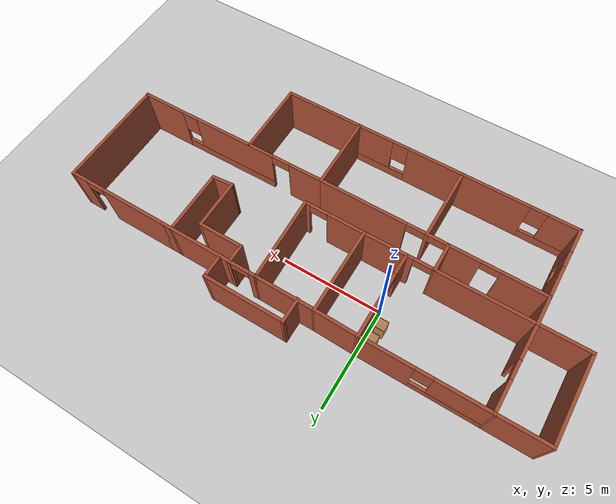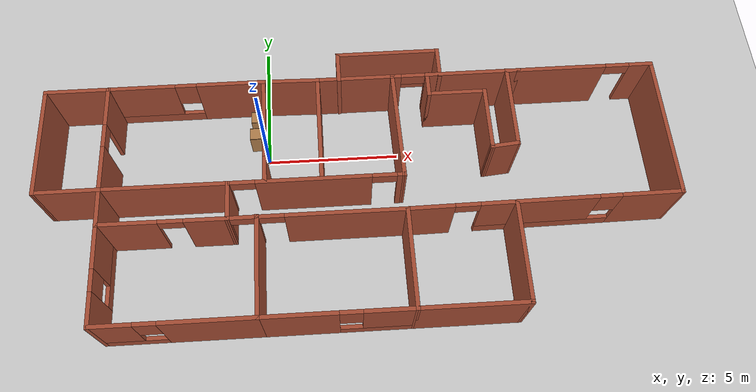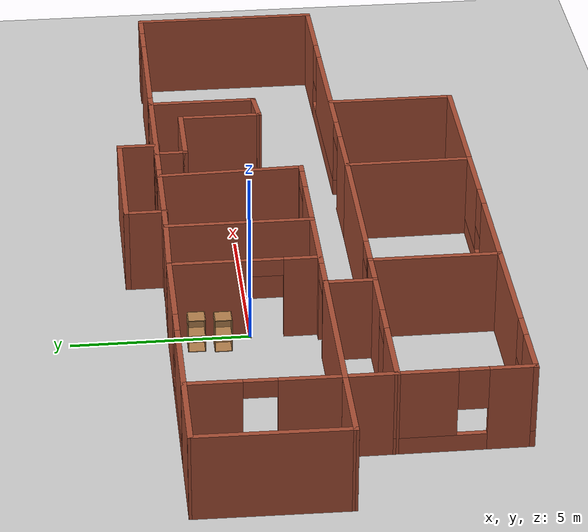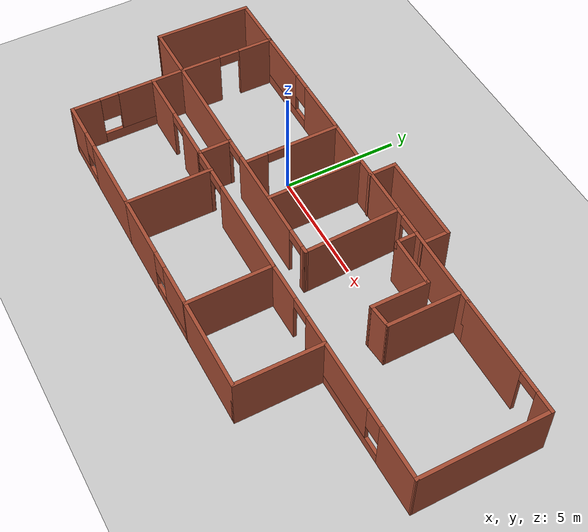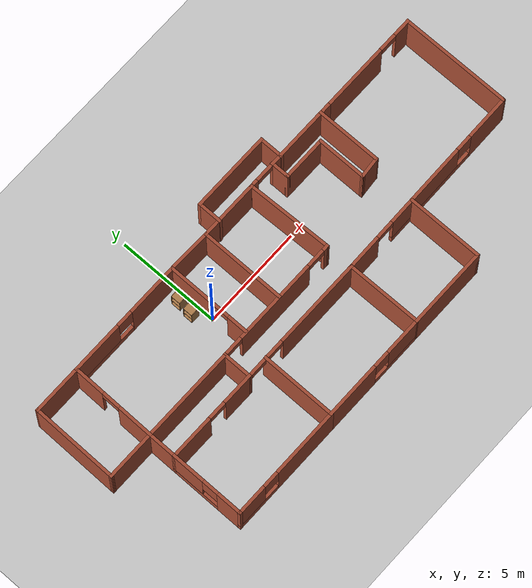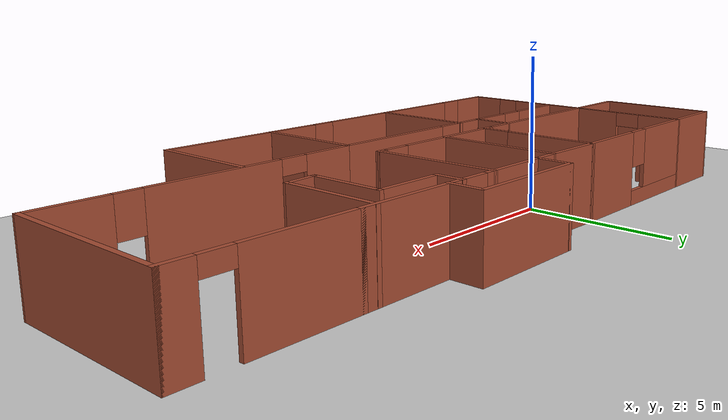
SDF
<sdf version="1.7">
 <world name="default">
  <model name="ground_plane">
   <static>1</static>
   <link name="link">
    <collision name="collision">
     <geometry><plane><normal>0 0 1</normal><size>100 100</size></plane></geometry>
     <surface><friction><ode><mu>100</mu><mu2>50</mu2></ode></friction></surface>
    </collision>
    <visual name="visual">
     <cast_shadows>0</cast_shadows>
     <geometry><plane><normal>0 0 1</normal><size>100 100</size></plane></geometry>
     <material>
      <script><uri>file://media/materials/scripts/gazebo.material</uri><name>Gazebo/Grey</name></script>
     </material>
    </visual>
   </link>
  </model>
  <model name="test_world">
   <pose>3.29981 -1.81395 0 0 -0 0</pose>
   <link name="Wall_0">
    <collision name="Wall_0_Collision">
     <geometry><box><size>1.5 0.15 2.5</size></box></geometry>
     <pose>0 0 1.25 0 -0 0</pose>
    </collision>
    <visual name="Wall_0_Visual">
     <pose>0 0 1.25 0 -0 0</pose>
     <geometry><box><size>1.5 0.15 2.5</size></box></geometry>
     <material>
      <script><uri>file://media/materials/scripts/gazebo.material</uri><name>Gazebo/Bricks</name></script>
      <ambient>1 1 1 1</ambient>
     </material>
     <meta><layer>0</layer></meta>
    </visual>
    <pose>-4.62561 -0.796372 0 0 -0 1.5708</pose>
   </link>
   <link name="Wall_1">
    <pose>-1.45061 -0.121372 0 0 -0 0</pose>
    <visual name="Wall_1_Visual_0">
     <pose>-3.1725 0 1.25 0 -0 0</pose>
     <geometry><box><size>0.155 0.15 2.5</size></box></geometry>
     <material>
      <script><uri>file://media/materials/scripts/gazebo.material</uri><name>Gazebo/Bricks</name></script>
      <ambient>1 1 1 1</ambient>
     </material>
     <meta><layer>0</layer></meta>
    </visual>
    <collision name="Wall_1_Collision_0">
     <geometry><box><size>0.155 0.15 2.5</size></box></geometry>
     <pose>-3.1725 0 1.25 0 -0 0</pose>
    </collision>
    <visual name="Wall_1_Visual_1">
     <pose>-0.091888 0 1.25 0 -0 0</pose>
     <geometry><box><size>4.20622 0.15 2.5</size></box></geometry>
     <material>
      <script><uri>file://media/materials/scripts/gazebo.material</uri><name>Gazebo/Bricks</name></script>
      <ambient>1 1 1 1</ambient>
     </material>
     <meta><layer>0</layer></meta>
    </visual>
    <collision name="Wall_1_Collision_1">
     <geometry><box><size>4.20622 0.15 2.5</size></box></geometry>
     <pose>-0.091888 0 1.25 0 -0 0</pose>
    </collision>
    <visual name="Wall_1_Visual_2">
     <pose>3.08061 0 1.25 0 -0 0</pose>
     <geometry><box><size>0.338776 0.15 2.5</size></box></geometry>
     <material>
      <script><uri>file://media/materials/scripts/gazebo.material</uri><name>Gazebo/Bricks</name></script>
      <ambient>1 1 1 1</ambient>
     </material>
     <meta><layer>0</layer></meta>
    </visual>
    <collision name="Wall_1_Collision_2">
     <geometry><box><size>0.338776 0.15 2.5</size></box></geometry>
     <pose>3.08061 0 1.25 0 -0 0</pose>
    </collision>
    <visual name="Wall_1_Visual_3">
     <pose>-2.645 0 2.25 0 -0 0</pose>
     <geometry><box><size>0.9 0.15 0.5</size></box></geometry>
     <material>
      <script><uri>file://media/materials/scripts/gazebo.material</uri><name>Gazebo/Bricks</name></script>
      <ambient>1 1 1 1</ambient>
     </material>
     <meta><layer>0</layer></meta>
    </visual>
    <collision name="Wall_1_Collision_3">
     <geometry><box><size>0.9 0.15 0.5</size></box></geometry>
     <pose>-2.645 0 2.25 0 -0 0</pose>
    </collision>
    <visual name="Wall_1_Visual_4">
     <pose>2.46122 0 2.25 0 -0 0</pose>
     <geometry><box><size>0.9 0.15 0.5</size></box></geometry>
     <material>
      <script><uri>file://media/materials/scripts/gazebo.material</uri><name>Gazebo/Bricks</name></script>
      <ambient>1 1 1 1</ambient>
     </material>
     <meta><layer>0</layer></meta>
    </visual>
    <collision name="Wall_1_Collision_4">
     <geometry><box><size>0.9 0.15 0.5</size></box></geometry>
     <pose>2.46122 0 2.25 0 -0 0</pose>
    </collision>
   </link>
   <link name="Wall_10">
    <collision name="Wall_10_Collision">
     <geometry><box><size>3.75 0.15 2.5</size></box></geometry>
     <pose>0 0 1.25 0 -0 0</pose>
    </collision>
    <visual name="Wall_10_Visual">
     <pose>0 0 1.25 0 -0 0</pose>
     <geometry><box><size>3.75 0.15 2.5</size></box></geometry>
     <material>
      <script><uri>file://media/materials/scripts/gazebo.material</uri><name>Gazebo/Bricks</name></script>
      <ambient>1 1 1 1</ambient>
     </material>
     <meta><layer>0</layer></meta>
    </visual>
    <pose>-3.59781 -3.25555 0 0 -0 -1.5708</pose>
   </link>
   <link name="Wall_11">
    <pose>-6.39781 -5.05555 0 0 -0 3.14159</pose>
    <visual name="Wall_11_Visual_0">
     <pose>-1.17433 0 1.25 0 -0 0</pose>
     <geometry><box><size>3.40134 0.15 2.5</size></box></geometry>
     <material>
      <script><uri>file://media/materials/scripts/gazebo.material</uri><name>Gazebo/Bricks</name></script>
      <ambient>1 1 1 1</ambient>
     </material>
     <meta><layer>0</layer></meta>
    </visual>
    <collision name="Wall_11_Collision_0">
     <geometry><box><size>3.40134 0.15 2.5</size></box></geometry>
     <pose>-1.17433 0 1.25 0 -0 0</pose>
    </collision>
    <visual name="Wall_11_Visual_1">
     <pose>1.70067 0 0.25 0 -0 0</pose>
     <geometry><box><size>2.34866 0.15 0.5</size></box></geometry>
     <material>
      <script><uri>file://media/materials/scripts/gazebo.material</uri><name>Gazebo/Bricks</name></script>
      <ambient>1 1 1 1</ambient>
     </material>
     <meta><layer>0</layer></meta>
    </visual>
    <collision name="Wall_11_Collision_1">
     <geometry><box><size>2.34866 0.15 0.5</size></box></geometry>
     <pose>1.70067 0 0.25 0 -0 0</pose>
    </collision>
    <visual name="Wall_11_Visual_2">
     <pose>2.10067 0 1.5 0 -0 0</pose>
     <geometry><box><size>1.54866 0.15 2</size></box></geometry>
     <material>
      <script><uri>file://media/materials/scripts/gazebo.material</uri><name>Gazebo/Bricks</name></script>
      <ambient>1 1 1 1</ambient>
     </material>
     <meta><layer>0</layer></meta>
    </visual>
    <collision name="Wall_11_Collision_2">
     <geometry><box><size>1.54866 0.15 2</size></box></geometry>
     <pose>2.10067 0 1.5 0 -0 0</pose>
    </collision>
    <visual name="Wall_11_Visual_3">
     <pose>0.926338 0 1.9 0 -0 0</pose>
     <geometry><box><size>0.8 0.15 1.2</size></box></geometry>
     <material>
      <script><uri>file://media/materials/scripts/gazebo.material</uri><name>Gazebo/Bricks</name></script>
      <ambient>1 1 1 1</ambient>
     </material>
     <meta><layer>0</layer></meta>
    </visual>
    <collision name="Wall_11_Collision_3">
     <geometry><box><size>0.8 0.15 1.2</size></box></geometry>
     <pose>0.926338 0 1.9 0 -0 0</pose>
    </collision>
   </link>
   <link name="Wall_12">
    <pose>-9.19781 -3.25555 0 0 -0 1.5708</pose>
    <visual name="Wall_12_Visual_0">
     <pose>-1.23439 0 1.25 0 -0 0</pose>
     <geometry><box><size>1.28121 0.15 2.5</size></box></geometry>
     <material>
      <script><uri>file://media/materials/scripts/gazebo.material</uri><name>Gazebo/Bricks</name></script>
      <ambient>1 1 1 1</ambient>
     </material>
     <meta><layer>0</layer></meta>
    </visual>
    <collision name="Wall_12_Collision_0">
     <geometry><box><size>1.28121 0.15 2.5</size></box></geometry>
     <pose>-1.23439 0 1.25 0 -0 0</pose>
    </collision>
    <visual name="Wall_12_Visual_1">
     <pose>0.640607 0 0.25 0 -0 0</pose>
     <geometry><box><size>2.46879 0.15 0.5</size></box></geometry>
     <material>
      <script><uri>file://media/materials/scripts/gazebo.material</uri><name>Gazebo/Bricks</name></script>
      <ambient>1 1 1 1</ambient>
     </material>
     <meta><layer>0</layer></meta>
    </visual>
    <collision name="Wall_12_Collision_1">
     <geometry><box><size>2.46879 0.15 0.5</size></box></geometry>
     <pose>0.640607 0 0.25 0 -0 0</pose>
    </collision>
    <visual name="Wall_12_Visual_2">
     <pose>1.04061 0 1.5 0 -0 0</pose>
     <geometry><box><size>1.66879 0.15 2</size></box></geometry>
     <material>
      <script><uri>file://media/materials/scripts/gazebo.material</uri><name>Gazebo/Bricks</name></script>
      <ambient>1 1 1 1</ambient>
     </material>
     <meta><layer>0</layer></meta>
    </visual>
    <collision name="Wall_12_Collision_2">
     <geometry><box><size>1.66879 0.15 2</size></box></geometry>
     <pose>1.04061 0 1.5 0 -0 0</pose>
    </collision>
    <visual name="Wall_12_Visual_3">
     <pose>-0.193786 0 1.9 0 -0 0</pose>
     <geometry><box><size>0.8 0.15 1.2</size></box></geometry>
     <material>
      <script><uri>file://media/materials/scripts/gazebo.material</uri><name>Gazebo/Bricks</name></script>
      <ambient>1 1 1 1</ambient>
     </material>
     <meta><layer>0</layer></meta>
    </visual>
    <collision name="Wall_12_Collision_3">
     <geometry><box><size>0.8 0.15 1.2</size></box></geometry>
     <pose>-0.193786 0 1.9 0 -0 0</pose>
    </collision>
   </link>
   <link name="Wall_13">
    <pose>-6.91171 -1.46346 0 0 -0 -0.00346</pose>
    <visual name="Wall_13_Visual_0">
     <pose>-1.25332 0 1.25 0 -0 0</pose>
     <geometry><box><size>2.21558 0.15 2.5</size></box></geometry>
     <material>
      <script><uri>file://media/materials/scripts/gazebo.material</uri><name>Gazebo/Bricks</name></script>
      <ambient>1 1 1 1</ambient>
     </material>
     <meta><layer>0</layer></meta>
    </visual>
    <collision name="Wall_13_Collision_0">
     <geometry><box><size>2.21558 0.15 2.5</size></box></geometry>
     <pose>-1.25332 0 1.25 0 -0 0</pose>
    </collision>
    <visual name="Wall_13_Visual_1">
     <pose>1.55779 0 1.25 0 -0 0</pose>
     <geometry><box><size>1.60664 0.15 2.5</size></box></geometry>
     <material>
      <script><uri>file://media/materials/scripts/gazebo.material</uri><name>Gazebo/Bricks</name></script>
      <ambient>1 1 1 1</ambient>
     </material>
     <meta><layer>0</layer></meta>
    </visual>
    <collision name="Wall_13_Collision_1">
     <geometry><box><size>1.60664 0.15 2.5</size></box></geometry>
     <pose>1.55779 0 1.25 0 -0 0</pose>
    </collision>
    <visual name="Wall_13_Visual_2">
     <pose>0.304473 0 2.25 0 -0 0</pose>
     <geometry><box><size>0.9 0.15 0.5</size></box></geometry>
     <material>
      <script><uri>file://media/materials/scripts/gazebo.material</uri><name>Gazebo/Bricks</name></script>
      <ambient>1 1 1 1</ambient>
     </material>
     <meta><layer>0</layer></meta>
    </visual>
    <collision name="Wall_13_Collision_2">
     <geometry><box><size>0.9 0.15 0.5</size></box></geometry>
     <pose>0.304473 0 2.25 0 -0 0</pose>
    </collision>
   </link>
   <link name="Wall_15">
    <collision name="Wall_15_Collision">
     <geometry><box><size>1.5 0.15 2.5</size></box></geometry>
     <pose>0 0 1.25 0 -0 0</pose>
    </collision>
    <visual name="Wall_15_Visual">
     <pose>0 0 1.25 0 -0 0</pose>
     <geometry><box><size>1.5 0.15 2.5</size></box></geometry>
     <material>
      <script><uri>file://media/materials/scripts/gazebo.material</uri><name>Gazebo/Bricks</name></script>
      <ambient>1 1 1 1</ambient>
     </material>
     <meta><layer>0</layer></meta>
    </visual>
    <pose>-9.19781 -0.780551 0 0 -0 1.5708</pose>
   </link>
   <link name="Wall_16">
    <collision name="Wall_16_Collision">
     <geometry><box><size>4.72222 0.15 2.5</size></box></geometry>
     <pose>0 0 1.25 0 -0 0</pose>
    </collision>
    <visual name="Wall_16_Visual">
     <pose>0 0 1.25 0 -0 0</pose>
     <geometry><box><size>4.72222 0.15 2.5</size></box></geometry>
     <material>
      <script><uri>file://media/materials/scripts/gazebo.material</uri><name>Gazebo/Bricks</name></script>
      <ambient>1 1 1 1</ambient>
     </material>
     <meta><layer>0</layer></meta>
    </visual>
    <pose>-6.91171 -0.113462 0 0 -0 -0.00346</pose>
   </link>
   <link name="Wall_18">
    <pose>-0.922808 -5.05555 0 0 -0 0</pose>
    <visual name="Wall_18_Visual_0">
     <pose>-1.34867 0 1.25 0 -0 0</pose>
     <geometry><box><size>2.80266 0.15 2.5</size></box></geometry>
     <material>
      <script><uri>file://media/materials/scripts/gazebo.material</uri><name>Gazebo/Bricks</name></script>
      <ambient>1 1 1 1</ambient>
     </material>
     <meta><layer>0</layer></meta>
    </visual>
    <collision name="Wall_18_Collision_0">
     <geometry><box><size>2.80266 0.15 2.5</size></box></geometry>
     <pose>-1.34867 0 1.25 0 -0 0</pose>
    </collision>
    <visual name="Wall_18_Visual_1">
     <pose>1.40133 0 0.25 0 -0 0</pose>
     <geometry><box><size>2.69734 0.15 0.5</size></box></geometry>
     <material>
      <script><uri>file://media/materials/scripts/gazebo.material</uri><name>Gazebo/Bricks</name></script>
      <ambient>1 1 1 1</ambient>
     </material>
     <meta><layer>0</layer></meta>
    </visual>
    <collision name="Wall_18_Collision_1">
     <geometry><box><size>2.69734 0.15 0.5</size></box></geometry>
     <pose>1.40133 0 0.25 0 -0 0</pose>
    </collision>
    <visual name="Wall_18_Visual_2">
     <pose>1.80133 0 1.5 0 -0 0</pose>
     <geometry><box><size>1.89734 0.15 2</size></box></geometry>
     <material>
      <script><uri>file://media/materials/scripts/gazebo.material</uri><name>Gazebo/Bricks</name></script>
      <ambient>1 1 1 1</ambient>
     </material>
     <meta><layer>0</layer></meta>
    </visual>
    <collision name="Wall_18_Collision_2">
     <geometry><box><size>1.89734 0.15 2</size></box></geometry>
     <pose>1.80133 0 1.5 0 -0 0</pose>
    </collision>
    <visual name="Wall_18_Visual_3">
     <pose>0.452662 0 1.9 0 -0 0</pose>
     <geometry><box><size>0.8 0.15 1.2</size></box></geometry>
     <material>
      <script><uri>file://media/materials/scripts/gazebo.material</uri><name>Gazebo/Bricks</name></script>
      <ambient>1 1 1 1</ambient>
     </material>
     <meta><layer>0</layer></meta>
    </visual>
    <collision name="Wall_18_Collision_3">
     <geometry><box><size>0.8 0.15 1.2</size></box></geometry>
     <pose>0.452662 0 1.9 0 -0 0</pose>
    </collision>
   </link>
   <link name="Wall_19">
    <collision name="Wall_19_Collision">
     <geometry><box><size>3.73429 0.15 2.5</size></box></geometry>
     <pose>0 0 1.25 0 -0 0</pose>
    </collision>
    <visual name="Wall_19_Visual">
     <pose>0 0 1.25 0 -0 0</pose>
     <geometry><box><size>3.73429 0.15 2.5</size></box></geometry>
     <material>
      <script><uri>file://media/materials/scripts/gazebo.material</uri><name>Gazebo/Bricks</name></script>
      <ambient>1 1 1 1</ambient>
     </material>
     <meta><layer>0</layer></meta>
    </visual>
    <pose>1.73829 -3.26346 0 0 -0 1.57855</pose>
   </link>
   <link name="Wall_21">
    <pose>-3.30016 1.97869 0 0 -0 1.5708</pose>
    <visual name="Wall_21_Visual_0">
     <pose>-1.60951 0 1.25 0 -0 0</pose>
     <geometry><box><size>1.03098 0.15 2.5</size></box></geometry>
     <material>
      <script><uri>file://media/materials/scripts/gazebo.material</uri><name>Gazebo/Bricks</name></script>
      <ambient>1 1 1 1</ambient>
     </material>
     <meta><layer>0</layer></meta>
    </visual>
    <collision name="Wall_21_Collision_0">
     <geometry><box><size>1.03098 0.15 2.5</size></box></geometry>
     <pose>-1.60951 0 1.25 0 -0 0</pose>
    </collision>
    <visual name="Wall_21_Visual_1">
     <pose>0.965488 0 1.25 0 -0 0</pose>
     <geometry><box><size>2.31902 0.15 2.5</size></box></geometry>
     <material>
      <script><uri>file://media/materials/scripts/gazebo.material</uri><name>Gazebo/Bricks</name></script>
      <ambient>1 1 1 1</ambient>
     </material>
     <meta><layer>0</layer></meta>
    </visual>
    <collision name="Wall_21_Collision_1">
     <geometry><box><size>2.31902 0.15 2.5</size></box></geometry>
     <pose>0.965488 0 1.25 0 -0 0</pose>
    </collision>
    <visual name="Wall_21_Visual_2">
     <pose>-0.644024 0 2.25 0 -0 0</pose>
     <geometry><box><size>0.9 0.15 0.5</size></box></geometry>
     <material>
      <script><uri>file://media/materials/scripts/gazebo.material</uri><name>Gazebo/Bricks</name></script>
      <ambient>1 1 1 1</ambient>
     </material>
     <meta><layer>0</layer></meta>
    </visual>
    <collision name="Wall_21_Collision_2">
     <geometry><box><size>0.9 0.15 0.5</size></box></geometry>
     <pose>-0.644024 0 2.25 0 -0 0</pose>
    </collision>
   </link>
   <link name="Wall_22">
    <pose>-6.22516 4.02869 0 0 -0 3.14159</pose>
    <visual name="Wall_22_Visual_0">
     <pose>-1.69302 0 1.25 0 -0 0</pose>
     <geometry><box><size>2.61396 0.15 2.5</size></box></geometry>
     <material>
      <script><uri>file://media/materials/scripts/gazebo.material</uri><name>Gazebo/Bricks</name></script>
      <ambient>1 1 1 1</ambient>
     </material>
     <meta><layer>0</layer></meta>
    </visual>
    <collision name="Wall_22_Collision_0">
     <geometry><box><size>2.61396 0.15 2.5</size></box></geometry>
     <pose>-1.69302 0 1.25 0 -0 0</pose>
    </collision>
    <visual name="Wall_22_Visual_1">
     <pose>1.30698 0 0.25 0 -0 0</pose>
     <geometry><box><size>3.38604 0.15 0.5</size></box></geometry>
     <material>
      <script><uri>file://media/materials/scripts/gazebo.material</uri><name>Gazebo/Bricks</name></script>
      <ambient>1 1 1 1</ambient>
     </material>
     <meta><layer>0</layer></meta>
    </visual>
    <collision name="Wall_22_Collision_1">
     <geometry><box><size>3.38604 0.15 0.5</size></box></geometry>
     <pose>1.30698 0 0.25 0 -0 0</pose>
    </collision>
    <visual name="Wall_22_Visual_2">
     <pose>1.70698 0 1.5 0 -0 0</pose>
     <geometry><box><size>2.58604 0.15 2</size></box></geometry>
     <material>
      <script><uri>file://media/materials/scripts/gazebo.material</uri><name>Gazebo/Bricks</name></script>
      <ambient>1 1 1 1</ambient>
     </material>
     <meta><layer>0</layer></meta>
    </visual>
    <collision name="Wall_22_Collision_2">
     <geometry><box><size>2.58604 0.15 2</size></box></geometry>
     <pose>1.70698 0 1.5 0 -0 0</pose>
    </collision>
    <visual name="Wall_22_Visual_3">
     <pose>0.013957 0 1.9 0 -0 0</pose>
     <geometry><box><size>0.8 0.15 1.2</size></box></geometry>
     <material>
      <script><uri>file://media/materials/scripts/gazebo.material</uri><name>Gazebo/Bricks</name></script>
      <ambient>1 1 1 1</ambient>
     </material>
     <meta><layer>0</layer></meta>
    </visual>
    <collision name="Wall_22_Collision_3">
     <geometry><box><size>0.8 0.15 1.2</size></box></geometry>
     <pose>0.013957 0 1.9 0 -0 0</pose>
    </collision>
   </link>
   <link name="Wall_23">
    <pose>-9.17398 1.96157 0 0 -0 -1.58232</pose>
    <visual name="Wall_23_Visual_0">
     <pose>-1.34939 0 1.25 0 -0 0</pose>
     <geometry><box><size>1.58574 0.15 2.5</size></box></geometry>
     <material>
      <script><uri>file://media/materials/scripts/gazebo.material</uri><name>Gazebo/Bricks</name></script>
      <ambient>1 1 1 1</ambient>
     </material>
     <meta><layer>0</layer></meta>
    </visual>
    <collision name="Wall_23_Collision_0">
     <geometry><box><size>1.58574 0.15 2.5</size></box></geometry>
     <pose>-1.34939 0 1.25 0 -0 0</pose>
    </collision>
    <visual name="Wall_23_Visual_1">
     <pose>1.24287 0 1.25 0 -0 0</pose>
     <geometry><box><size>1.79878 0.15 2.5</size></box></geometry>
     <material>
      <script><uri>file://media/materials/scripts/gazebo.material</uri><name>Gazebo/Bricks</name></script>
      <ambient>1 1 1 1</ambient>
     </material>
     <meta><layer>0</layer></meta>
    </visual>
    <collision name="Wall_23_Collision_1">
     <geometry><box><size>1.79878 0.15 2.5</size></box></geometry>
     <pose>1.24287 0 1.25 0 -0 0</pose>
    </collision>
    <visual name="Wall_23_Visual_2">
     <pose>-0.10652 0 2.25 0 -0 0</pose>
     <geometry><box><size>0.9 0.15 0.5</size></box></geometry>
     <material>
      <script><uri>file://media/materials/scripts/gazebo.material</uri><name>Gazebo/Bricks</name></script>
      <ambient>1 1 1 1</ambient>
     </material>
     <meta><layer>0</layer></meta>
    </visual>
    <collision name="Wall_23_Collision_2">
     <geometry><box><size>0.9 0.15 0.5</size></box></geometry>
     <pose>-0.10652 0 2.25 0 -0 0</pose>
    </collision>
   </link>
   <link name="Wall_25">
    <collision name="Wall_25_Collision">
     <geometry><box><size>2.5 0.15 2.5</size></box></geometry>
     <pose>0 0 1.25 0 -0 0</pose>
    </collision>
    <visual name="Wall_25_Visual">
     <pose>0 0 1.25 0 -0 0</pose>
     <geometry><box><size>2.5 0.15 2.5</size></box></geometry>
     <material>
      <script><uri>file://media/materials/scripts/gazebo.material</uri><name>Gazebo/Bricks</name></script>
      <ambient>1 1 1 1</ambient>
     </material>
     <meta><layer>0</layer></meta>
    </visual>
    <pose>-10.3252 4.02869 0 0 -0 3.14159</pose>
   </link>
   <link name="Wall_29">
    <collision name="Wall_29_Collision">
     <geometry><box><size>2.5 0.15 2.5</size></box></geometry>
     <pose>0 0 1.25 0 -0 0</pose>
    </collision>
    <visual name="Wall_29_Visual">
     <pose>0 0 1.25 0 -0 0</pose>
     <geometry><box><size>2.5 0.15 2.5</size></box></geometry>
     <material>
      <script><uri>file://media/materials/scripts/gazebo.material</uri><name>Gazebo/Bricks</name></script>
      <ambient>1 1 1 1</ambient>
     </material>
     <meta><layer>0</layer></meta>
    </visual>
    <pose>-10.3728 -0.105551 0 0 -0 3.14159</pose>
   </link>
   <link name="Wall_3">
    <pose>-1.45061 -1.47137 0 0 -0 0</pose>
    <visual name="Wall_3_Visual_0">
     <pose>-3.1725 0 1.25 0 -0 0</pose>
     <geometry><box><size>0.155 0.15 2.5</size></box></geometry>
     <material>
      <script><uri>file://media/materials/scripts/gazebo.material</uri><name>Gazebo/Bricks</name></script>
      <ambient>1 1 1 1</ambient>
     </material>
     <meta><layer>0</layer></meta>
    </visual>
    <collision name="Wall_3_Collision_0">
     <geometry><box><size>0.155 0.15 2.5</size></box></geometry>
     <pose>-3.1725 0 1.25 0 -0 0</pose>
    </collision>
    <visual name="Wall_3_Visual_1">
     <pose>-2.13145 0 1.25 0 -0 0</pose>
     <geometry><box><size>0.127105 0.15 2.5</size></box></geometry>
     <material>
      <script><uri>file://media/materials/scripts/gazebo.material</uri><name>Gazebo/Bricks</name></script>
      <ambient>1 1 1 1</ambient>
     </material>
     <meta><layer>0</layer></meta>
    </visual>
    <collision name="Wall_3_Collision_1">
     <geometry><box><size>0.127105 0.15 2.5</size></box></geometry>
     <pose>-2.13145 0 1.25 0 -0 0</pose>
    </collision>
    <visual name="Wall_3_Visual_2">
     <pose>1.04105 0 1.25 0 -0 0</pose>
     <geometry><box><size>4.41789 0.15 2.5</size></box></geometry>
     <material>
      <script><uri>file://media/materials/scripts/gazebo.material</uri><name>Gazebo/Bricks</name></script>
      <ambient>1 1 1 1</ambient>
     </material>
     <meta><layer>0</layer></meta>
    </visual>
    <collision name="Wall_3_Collision_2">
     <geometry><box><size>4.41789 0.15 2.5</size></box></geometry>
     <pose>1.04105 0 1.25 0 -0 0</pose>
    </collision>
    <visual name="Wall_3_Visual_3">
     <pose>-2.645 0 2.25 0 -0 0</pose>
     <geometry><box><size>0.9 0.15 0.5</size></box></geometry>
     <material>
      <script><uri>file://media/materials/scripts/gazebo.material</uri><name>Gazebo/Bricks</name></script>
      <ambient>1 1 1 1</ambient>
     </material>
     <meta><layer>0</layer></meta>
    </visual>
    <collision name="Wall_3_Collision_3">
     <geometry><box><size>0.9 0.15 0.5</size></box></geometry>
     <pose>-2.645 0 2.25 0 -0 0</pose>
    </collision>
    <visual name="Wall_3_Visual_4">
     <pose>-1.6179 0 2.25 0 -0 0</pose>
     <geometry><box><size>0.9 0.15 0.5</size></box></geometry>
     <material>
      <script><uri>file://media/materials/scripts/gazebo.material</uri><name>Gazebo/Bricks</name></script>
      <ambient>1 1 1 1</ambient>
     </material>
     <meta><layer>0</layer></meta>
    </visual>
    <collision name="Wall_3_Collision_4">
     <geometry><box><size>0.9 0.15 0.5</size></box></geometry>
     <pose>-1.6179 0 2.25 0 -0 0</pose>
    </collision>
   </link>
   <link name="Wall_30">
    <collision name="Wall_30_Collision">
     <geometry><box><size>4.28451 0.15 2.5</size></box></geometry>
     <pose>0 0 1.25 0 -0 0</pose>
    </collision>
    <visual name="Wall_30_Visual">
     <pose>0 0 1.25 0 -0 0</pose>
     <geometry><box><size>4.28451 0.15 2.5</size></box></geometry>
     <material>
      <script><uri>file://media/materials/scripts/gazebo.material</uri><name>Gazebo/Bricks</name></script>
      <ambient>1 1 1 1</ambient>
     </material>
     <meta><layer>0</layer></meta>
    </visual>
    <pose>-11.524 1.96157 0 0 -0 1.55927</pose>
   </link>
   <link name="Wall_32">
    <collision name="Wall_32_Collision">
     <geometry><box><size>4.25 0.15 2.5</size></box></geometry>
     <pose>0 0 1.25 0 -0 0</pose>
    </collision>
    <visual name="Wall_32_Visual">
     <pose>0 0 1.25 0 -0 0</pose>
     <geometry><box><size>4.25 0.15 2.5</size></box></geometry>
     <material>
      <script><uri>file://media/materials/scripts/gazebo.material</uri><name>Gazebo/Bricks</name></script>
      <ambient>1 1 1 1</ambient>
     </material>
     <meta><layer>0</layer></meta>
    </visual>
    <pose>-1.25215 1.93566 0 0 -0 1.5708</pose>
   </link>
   <link name="Wall_33">
    <collision name="Wall_33_Collision">
     <geometry><box><size>2.19847 0.15 2.5</size></box></geometry>
     <pose>0 0 1.25 0 -0 0</pose>
    </collision>
    <visual name="Wall_33_Visual">
     <pose>0 0 1.25 0 -0 0</pose>
     <geometry><box><size>2.19847 0.15 2.5</size></box></geometry>
     <material>
      <script><uri>file://media/materials/scripts/gazebo.material</uri><name>Gazebo/Bricks</name></script>
      <ambient>1 1 1 1</ambient>
     </material>
     <meta><layer>0</layer></meta>
    </visual>
    <pose>-2.27615 4.00718 0 0 -0 3.12059</pose>
   </link>
   <link name="Wall_35">
    <collision name="Wall_35_Collision">
     <geometry><box><size>3 0.15 2.5</size></box></geometry>
     <pose>0 0 1.25 0 -0 0</pose>
    </collision>
    <visual name="Wall_35_Visual">
     <pose>0 0 1.25 0 -0 0</pose>
     <geometry><box><size>3 0.15 2.5</size></box></geometry>
     <material>
      <script><uri>file://media/materials/scripts/gazebo.material</uri><name>Gazebo/Bricks</name></script>
      <ambient>1 1 1 1</ambient>
     </material>
     <meta><layer>0</layer></meta>
    </visual>
    <pose>0.172854 3.98566 0 0 -0 0</pose>
   </link>
   <link name="Wall_36">
    <collision name="Wall_36_Collision">
     <geometry><box><size>4.25898 0.15 2.5</size></box></geometry>
     <pose>0 0 1.25 0 -0 0</pose>
    </collision>
    <visual name="Wall_36_Visual">
     <pose>0 0 1.25 0 -0 0</pose>
     <geometry><box><size>4.25898 0.15 2.5</size></box></geometry>
     <material>
      <script><uri>file://media/materials/scripts/gazebo.material</uri><name>Gazebo/Bricks</name></script>
      <ambient>1 1 1 1</ambient>
     </material>
     <meta><layer>0</layer></meta>
    </visual>
    <pose>1.66112 1.93215 0 0 -0 -1.54</pose>
   </link>
   <link name="Wall_38">
    <pose>4.02285 3.98566 0 0 -0 0</pose>
    <visual name="Wall_38_Visual_0">
     <pose>-2.28928 0 1.25 0 -0 0</pose>
     <geometry><box><size>0.421438 0.15 2.5</size></box></geometry>
     <material>
      <script><uri>file://media/materials/scripts/gazebo.material</uri><name>Gazebo/Bricks</name></script>
      <ambient>1 1 1 1</ambient>
     </material>
     <meta><layer>0</layer></meta>
    </visual>
    <collision name="Wall_38_Collision_0">
     <geometry><box><size>0.421438 0.15 2.5</size></box></geometry>
     <pose>-2.28928 0 1.25 0 -0 0</pose>
    </collision>
    <visual name="Wall_38_Visual_1">
     <pose>0.660719 0 1.25 0 -0 0</pose>
     <geometry><box><size>3.67856 0.15 2.5</size></box></geometry>
     <material>
      <script><uri>file://media/materials/scripts/gazebo.material</uri><name>Gazebo/Bricks</name></script>
      <ambient>1 1 1 1</ambient>
     </material>
     <meta><layer>0</layer></meta>
    </visual>
    <collision name="Wall_38_Collision_1">
     <geometry><box><size>3.67856 0.15 2.5</size></box></geometry>
     <pose>0.660719 0 1.25 0 -0 0</pose>
    </collision>
    <visual name="Wall_38_Visual_2">
     <pose>-1.62856 0 2.25 0 -0 0</pose>
     <geometry><box><size>0.9 0.15 0.5</size></box></geometry>
     <material>
      <script><uri>file://media/materials/scripts/gazebo.material</uri><name>Gazebo/Bricks</name></script>
      <ambient>1 1 1 1</ambient>
     </material>
     <meta><layer>0</layer></meta>
    </visual>
    <collision name="Wall_38_Collision_2">
     <geometry><box><size>0.9 0.15 0.5</size></box></geometry>
     <pose>-1.62856 0 2.25 0 -0 0</pose>
    </collision>
   </link>
   <link name="Wall_41">
    <collision name="Wall_41_Collision">
     <geometry><box><size>1.25 0.15 2.5</size></box></geometry>
     <pose>0 0 1.25 0 -0 0</pose>
    </collision>
    <visual name="Wall_41_Visual">
     <pose>0 0 1.25 0 -0 0</pose>
     <geometry><box><size>1.25 0.15 2.5</size></box></geometry>
     <material>
      <script><uri>file://media/materials/scripts/gazebo.material</uri><name>Gazebo/Bricks</name></script>
      <ambient>1 1 1 1</ambient>
     </material>
     <meta><layer>0</layer></meta>
    </visual>
    <pose>-0.434536 4.50613 0 0 -0 1.5708</pose>
   </link>
   <link name="Wall_42">
    <collision name="Wall_42_Collision">
     <geometry><box><size>4 0.15 2.5</size></box></geometry>
     <pose>0 0 1.25 0 -0 0</pose>
    </collision>
    <visual name="Wall_42_Visual">
     <pose>0 0 1.25 0 -0 0</pose>
     <geometry><box><size>4 0.15 2.5</size></box></geometry>
     <material>
      <script><uri>file://media/materials/scripts/gazebo.material</uri><name>Gazebo/Bricks</name></script>
      <ambient>1 1 1 1</ambient>
     </material>
     <meta><layer>0</layer></meta>
    </visual>
    <pose>1.49046 5.05613 0 0 -0 0</pose>
   </link>
   <link name="Wall_45">
    <collision name="Wall_45_Collision">
     <geometry><box><size>1.25 0.15 2.5</size></box></geometry>
     <pose>0 0 1.25 0 -0 0</pose>
    </collision>
    <visual name="Wall_45_Visual">
     <pose>0 0 1.25 0 -0 0</pose>
     <geometry><box><size>1.25 0.15 2.5</size></box></geometry>
     <material>
      <script><uri>file://media/materials/scripts/gazebo.material</uri><name>Gazebo/Bricks</name></script>
      <ambient>1 1 1 1</ambient>
     </material>
     <meta><layer>0</layer></meta>
    </visual>
    <pose>3.41546 4.50613 0 0 -0 -1.5708</pose>
   </link>
   <link name="Wall_47">
    <pose>8.99785 3.98566 0 0 -0 0</pose>
    <visual name="Wall_47_Visual_0">
     <pose>-0.909562 0 1.25 0 -0 0</pose>
     <geometry><box><size>3.43088 0.15 2.5</size></box></geometry>
     <material>
      <script><uri>file://media/materials/scripts/gazebo.material</uri><name>Gazebo/Bricks</name></script>
      <ambient>1 1 1 1</ambient>
     </material>
     <meta><layer>0</layer></meta>
    </visual>
    <collision name="Wall_47_Collision_0">
     <geometry><box><size>3.43088 0.15 2.5</size></box></geometry>
     <pose>-0.909562 0 1.25 0 -0 0</pose>
    </collision>
    <visual name="Wall_47_Visual_1">
     <pose>2.16544 0 1.25 0 -0 0</pose>
     <geometry><box><size>0.919123 0.15 2.5</size></box></geometry>
     <material>
      <script><uri>file://media/materials/scripts/gazebo.material</uri><name>Gazebo/Bricks</name></script>
      <ambient>1 1 1 1</ambient>
     </material>
     <meta><layer>0</layer></meta>
    </visual>
    <collision name="Wall_47_Collision_1">
     <geometry><box><size>0.919123 0.15 2.5</size></box></geometry>
     <pose>2.16544 0 1.25 0 -0 0</pose>
    </collision>
    <visual name="Wall_47_Visual_2">
     <pose>1.25588 0 2.25 0 -0 0</pose>
     <geometry><box><size>0.9 0.15 0.5</size></box></geometry>
     <material>
      <script><uri>file://media/materials/scripts/gazebo.material</uri><name>Gazebo/Bricks</name></script>
      <ambient>1 1 1 1</ambient>
     </material>
     <meta><layer>0</layer></meta>
    </visual>
    <collision name="Wall_47_Collision_2">
     <geometry><box><size>0.9 0.15 0.5</size></box></geometry>
     <pose>1.25588 0 2.25 0 -0 0</pose>
    </collision>
   </link>
   <link name="Wall_48">
    <collision name="Wall_48_Collision">
     <geometry><box><size>5.5 0.15 2.5</size></box></geometry>
     <pose>0 0 1.25 0 -0 0</pose>
    </collision>
    <visual name="Wall_48_Visual">
     <pose>0 0 1.25 0 -0 0</pose>
     <geometry><box><size>5.5 0.15 2.5</size></box></geometry>
     <material>
      <script><uri>file://media/materials/scripts/gazebo.material</uri><name>Gazebo/Bricks</name></script>
      <ambient>1 1 1 1</ambient>
     </material>
     <meta><layer>0</layer></meta>
    </visual>
    <pose>11.5479 1.31066 0 0 -0 -1.5708</pose>
   </link>
   <link name="Wall_49">
    <pose>6.63612 -1.41786 0 0 -0 -3.1307</pose>
    <visual name="Wall_49_Visual_0">
     <pose>-3.85978 0 1.25 0 -0 0</pose>
     <geometry><box><size>2.25449 0.15 2.5</size></box></geometry>
     <material>
      <script><uri>file://media/materials/scripts/gazebo.material</uri><name>Gazebo/Bricks</name></script>
      <ambient>1 1 1 1</ambient>
     </material>
     <meta><layer>0</layer></meta>
    </visual>
    <collision name="Wall_49_Collision_0">
     <geometry><box><size>2.25449 0.15 2.5</size></box></geometry>
     <pose>-3.85978 0 1.25 0 -0 0</pose>
    </collision>
    <visual name="Wall_49_Visual_1">
     <pose>4.10588 0 1.25 0 -0 0</pose>
     <geometry><box><size>1.7623 0.15 2.5</size></box></geometry>
     <material>
      <script><uri>file://media/materials/scripts/gazebo.material</uri><name>Gazebo/Bricks</name></script>
      <ambient>1 1 1 1</ambient>
     </material>
     <meta><layer>0</layer></meta>
    </visual>
    <collision name="Wall_49_Collision_1">
     <geometry><box><size>1.7623 0.15 2.5</size></box></geometry>
     <pose>4.10588 0 1.25 0 -0 0</pose>
    </collision>
    <visual name="Wall_49_Visual_2">
     <pose>-0.203906 0 0.25 0 -0 0</pose>
     <geometry><box><size>5.05727 0.15 0.5</size></box></geometry>
     <material>
      <script><uri>file://media/materials/scripts/gazebo.material</uri><name>Gazebo/Bricks</name></script>
      <ambient>1 1 1 1</ambient>
     </material>
     <meta><layer>0</layer></meta>
    </visual>
    <collision name="Wall_49_Collision_2">
     <geometry><box><size>5.05727 0.15 0.5</size></box></geometry>
     <pose>-0.203906 0 0.25 0 -0 0</pose>
    </collision>
    <visual name="Wall_49_Visual_3">
     <pose>0.196094 0 1.5 0 -0 0</pose>
     <geometry><box><size>4.25727 0.15 2</size></box></geometry>
     <material>
      <script><uri>file://media/materials/scripts/gazebo.material</uri><name>Gazebo/Bricks</name></script>
      <ambient>1 1 1 1</ambient>
     </material>
     <meta><layer>0</layer></meta>
    </visual>
    <collision name="Wall_49_Collision_3">
     <geometry><box><size>4.25727 0.15 2</size></box></geometry>
     <pose>0.196094 0 1.5 0 -0 0</pose>
    </collision>
    <visual name="Wall_49_Visual_4">
     <pose>-2.33254 0 1.9 0 -0 0</pose>
     <geometry><box><size>0.8 0.15 1.2</size></box></geometry>
     <material>
      <script><uri>file://media/materials/scripts/gazebo.material</uri><name>Gazebo/Bricks</name></script>
      <ambient>1 1 1 1</ambient>
     </material>
     <meta><layer>0</layer></meta>
    </visual>
    <collision name="Wall_49_Collision_4">
     <geometry><box><size>0.8 0.15 1.2</size></box></geometry>
     <pose>-2.33254 0 1.9 0 -0 0</pose>
    </collision>
    <visual name="Wall_49_Visual_5">
     <pose>2.77473 0 2.25 0 -0 0</pose>
     <geometry><box><size>0.9 0.15 0.5</size></box></geometry>
     <material>
      <script><uri>file://media/materials/scripts/gazebo.material</uri><name>Gazebo/Bricks</name></script>
      <ambient>1 1 1 1</ambient>
     </material>
     <meta><layer>0</layer></meta>
    </visual>
    <collision name="Wall_49_Collision_5">
     <geometry><box><size>0.9 0.15 0.5</size></box></geometry>
     <pose>2.77473 0 2.25 0 -0 0</pose>
    </collision>
   </link>
   <link name="Wall_51">
    <collision name="Wall_51_Collision">
     <geometry><box><size>3.25 0.15 2.5</size></box></geometry>
     <pose>0 0 1.25 0 -0 0</pose>
    </collision>
    <visual name="Wall_51_Visual">
     <pose>0 0 1.25 0 -0 0</pose>
     <geometry><box><size>3.25 0.15 2.5</size></box></geometry>
     <material>
      <script><uri>file://media/materials/scripts/gazebo.material</uri><name>Gazebo/Bricks</name></script>
      <ambient>1 1 1 1</ambient>
     </material>
     <meta><layer>0</layer></meta>
    </visual>
    <pose>5.98231 2.44015 0 0 -0 -1.5708</pose>
   </link>
   <link name="Wall_53">
    <collision name="Wall_53_Collision">
     <geometry><box><size>4 0.15 2.5</size></box></geometry>
     <pose>0 0 1.25 0 -0 0</pose>
    </collision>
    <visual name="Wall_53_Visual">
     <pose>0 0 1.25 0 -0 0</pose>
     <geometry><box><size>4 0.15 2.5</size></box></geometry>
     <material>
      <script><uri>file://media/materials/scripts/gazebo.material</uri><name>Gazebo/Bricks</name></script>
      <ambient>1 1 1 1</ambient>
     </material>
     <meta><layer>0</layer></meta>
    </visual>
    <pose>3.67719 -5.05555 0 0 -0 0</pose>
   </link>
   <link name="Wall_54">
    <collision name="Wall_54_Collision">
     <geometry><box><size>3.75 0.15 2.5</size></box></geometry>
     <pose>0 0 1.25 0 -0 0</pose>
    </collision>
    <visual name="Wall_54_Visual">
     <pose>0 0 1.25 0 -0 0</pose>
     <geometry><box><size>3.75 0.15 2.5</size></box></geometry>
     <material>
      <script><uri>file://media/materials/scripts/gazebo.material</uri><name>Gazebo/Bricks</name></script>
      <ambient>1 1 1 1</ambient>
     </material>
     <meta><layer>0</layer></meta>
    </visual>
    <pose>5.60219 -3.25555 0 0 -0 1.5708</pose>
   </link>
   <link name="Wall_56">
    <collision name="Wall_56_Collision">
     <geometry><box><size>1 0.15 2.5</size></box></geometry>
     <pose>0 0 1.25 0 -0 0</pose>
    </collision>
    <visual name="Wall_56_Visual">
     <pose>0 0 1.25 0 -0 0</pose>
     <geometry><box><size>1 0.15 2.5</size></box></geometry>
     <material>
      <script><uri>file://media/materials/scripts/gazebo.material</uri><name>Gazebo/Bricks</name></script>
      <ambient>1 1 1 1</ambient>
     </material>
     <meta><layer>0</layer></meta>
    </visual>
    <pose>2.92802 3.57823 0 0 -0 -1.5708</pose>
   </link>
   <link name="Wall_57">
    <collision name="Wall_57_Collision">
     <geometry><box><size>2.25 0.15 2.5</size></box></geometry>
     <pose>0 0 1.25 0 -0 0</pose>
    </collision>
    <visual name="Wall_57_Visual">
     <pose>0 0 1.25 0 -0 0</pose>
     <geometry><box><size>2.25 0.15 2.5</size></box></geometry>
     <material>
      <script><uri>file://media/materials/scripts/gazebo.material</uri><name>Gazebo/Bricks</name></script>
      <ambient>1 1 1 1</ambient>
     </material>
     <meta><layer>0</layer></meta>
    </visual>
    <pose>3.97802 3.15323 0 0 -0 0</pose>
   </link>
   <link name="Wall_58">
    <collision name="Wall_58_Collision">
     <geometry><box><size>2.5 0.15 2.5</size></box></geometry>
     <pose>0 0 1.25 0 -0 0</pose>
    </collision>
    <visual name="Wall_58_Visual">
     <pose>0 0 1.25 0 -0 0</pose>
     <geometry><box><size>2.5 0.15 2.5</size></box></geometry>
     <material>
      <script><uri>file://media/materials/scripts/gazebo.material</uri><name>Gazebo/Bricks</name></script>
      <ambient>1 1 1 1</ambient>
     </material>
     <meta><layer>0</layer></meta>
    </visual>
    <pose>5.02802 1.97823 0 0 -0 -1.5708</pose>
   </link>
   <link name="Wall_59">
    <collision name="Wall_59_Collision">
     <geometry><box><size>1.10824 0.15 2.5</size></box></geometry>
     <pose>0 0 1.25 0 -0 0</pose>
    </collision>
    <visual name="Wall_59_Visual">
     <pose>0 0 1.25 0 -0 0</pose>
     <geometry><box><size>1.10824 0.15 2.5</size></box></geometry>
     <material>
      <script><uri>file://media/materials/scripts/gazebo.material</uri><name>Gazebo/Bricks</name></script>
      <ambient>1 1 1 1</ambient>
     </material>
     <meta><layer>0</layer></meta>
    </visual>
    <pose>5.50516 0.846694 0 0 -0 0.090834</pose>
   </link>
   <static>1</static>
  </model>
  <model name="cabinet_6">
   <static>1</static>
   <link name="cabinet_bottom_plate">
    <inertial>
     <pose>0 0 -1 0 -0 0</pose>
     <inertia><ixx>2.05</ixx><ixy>0</ixy><ixz>0</ixz><iyy>2.05</iyy><iyz>0</iyz><izz>2.05</izz></inertia>
     <mass>25</mass>
    </inertial>
    <collision name="cabinet_bottom_plate_geom">
     <pose>0 0 0.01 0 -0 0</pose>
     <geometry><box><size>0.45 0.45 0.02</size></box></geometry>
    </collision>
    <visual name="cabinet_bottom_plate_geom_visual">
     <pose>0 0 0.01 0 -0 0</pose>
     <geometry><box><size>0.45 0.45 0.02</size></box></geometry>
     <material>
      <script><uri>file://media/materials/scripts/gazebo.material</uri><name>Gazebo/Wood</name></script>
     </material>
    </visual>
    <collision name="cabinet_bottom_plate_geom_cabinet_back_plate">
     <pose>0.235 0 0.51 0 -0 0</pose>
     <geometry><box><size>0.02 0.45 1.02</size></box></geometry>
    </collision>
    <visual name="cabinet_bottom_plate_geom_cabinet_back_plate_visual">
     <pose>0.235 0 0.51 0 -0 0</pose>
     <geometry><box><size>0.02 0.45 1.02</size></box></geometry>
     <material>
      <script><uri>file://media/materials/scripts/gazebo.material</uri><name>Gazebo/Wood</name></script>
     </material>
    </visual>
    <collision name="cabinet_bottom_plate_geom_cabinet_left_plate">
     <pose>0 0.235 0.51 0 -0 0</pose>
     <geometry><box><size>0.45 0.02 1.02</size></box></geometry>
    </collision>
    <visual name="cabinet_bottom_plate_geom_cabinet_left_plate_visual">
     <pose>0 0.235 0.51 0 -0 0</pose>
     <geometry><box><size>0.45 0.02 1.02</size></box></geometry>
     <material>
      <script><uri>file://media/materials/scripts/gazebo.material</uri><name>Gazebo/Wood</name></script>
     </material>
    </visual>
    <collision name="cabinet_bottom_plate_geom_cabinet_middle_plate">
     <pose>0 0 0.51 0 -0 0</pose>
     <geometry><box><size>0.45 0.45 0.02</size></box></geometry>
    </collision>
    <visual name="cabinet_bottom_plate_geom_cabinet_middle_plate_visual">
     <pose>0 0 0.51 0 -0 0</pose>
     <geometry><box><size>0.45 0.45 0.02</size></box></geometry>
     <material>
      <script><uri>file://media/materials/scripts/gazebo.material</uri><name>Gazebo/Wood</name></script>
     </material>
    </visual>
    <collision name="cabinet_bottom_plate_geom_cabinet_right_plate">
     <pose>0 -0.235 0.51 0 -0 0</pose>
     <geometry><box><size>0.45 0.02 1.02</size></box></geometry>
    </collision>
    <visual name="cabinet_bottom_plate_geom_cabinet_right_plate_visual">
     <pose>0 -0.235 0.51 0 -0 0</pose>
     <geometry><box><size>0.45 0.02 1.02</size></box></geometry>
     <material>
      <script><uri>file://media/materials/scripts/gazebo.material</uri><name>Gazebo/Wood</name></script>
     </material>
    </visual>
    <collision name="cabinet_bottom_plate_geom_cabinet_top_plate">
     <pose>0 0 1.01 0 -0 0</pose>
     <geometry><box><size>0.45 0.45 0.02</size></box></geometry>
    </collision>
    <visual name="cabinet_bottom_plate_geom_cabinet_top_plate_visual">
     <pose>0 0 1.01 0 -0 0</pose>
     <geometry><box><size>0.45 0.45 0.02</size></box></geometry>
     <material>
      <script><uri>file://media/materials/scripts/gazebo.material</uri><name>Gazebo/Wood</name></script>
     </material>
    </visual>
   </link>
   <pose>-0.457098 0.792076 0 0 -0 0</pose>
  </model>
  <model name="cabinet_7">
   <static>1</static>
   <link name="cabinet_bottom_plate">
    <inertial>
     <pose>0 0 -1 0 -0 0</pose>
     <inertia><ixx>2.05</ixx><ixy>0</ixy><ixz>0</ixz><iyy>2.05</iyy><iyz>0</iyz><izz>2.05</izz></inertia>
     <mass>25</mass>
    </inertial>
    <collision name="cabinet_bottom_plate_geom">
     <pose>0 0 0.01 0 -0 0</pose>
     <geometry><box><size>0.45 0.45 0.02</size></box></geometry>
    </collision>
    <visual name="cabinet_bottom_plate_geom_visual">
     <pose>0 0 0.01 0 -0 0</pose>
     <geometry><box><size>0.45 0.45 0.02</size></box></geometry>
     <material>
      <script><uri>file://media/materials/scripts/gazebo.material</uri><name>Gazebo/Wood</name></script>
     </material>
    </visual>
    <collision name="cabinet_bottom_plate_geom_cabinet_back_plate">
     <pose>0.235 0 0.51 0 -0 0</pose>
     <geometry><box><size>0.02 0.45 1.02</size></box></geometry>
    </collision>
    <visual name="cabinet_bottom_plate_geom_cabinet_back_plate_visual">
     <pose>0.235 0 0.51 0 -0 0</pose>
     <geometry><box><size>0.02 0.45 1.02</size></box></geometry>
     <material>
      <script><uri>file://media/materials/scripts/gazebo.material</uri><name>Gazebo/Wood</name></script>
     </material>
    </visual>
    <collision name="cabinet_bottom_plate_geom_cabinet_left_plate">
     <pose>0 0.235 0.51 0 -0 0</pose>
     <geometry><box><size>0.45 0.02 1.02</size></box></geometry>
    </collision>
    <visual name="cabinet_bottom_plate_geom_cabinet_left_plate_visual">
     <pose>0 0.235 0.51 0 -0 0</pose>
     <geometry><box><size>0.45 0.02 1.02</size></box></geometry>
     <material>
      <script><uri>file://media/materials/scripts/gazebo.material</uri><name>Gazebo/Wood</name></script>
     </material>
    </visual>
    <collision name="cabinet_bottom_plate_geom_cabinet_middle_plate">
     <pose>0 0 0.51 0 -0 0</pose>
     <geometry><box><size>0.45 0.45 0.02</size></box></geometry>
    </collision>
    <visual name="cabinet_bottom_plate_geom_cabinet_middle_plate_visual">
     <pose>0 0 0.51 0 -0 0</pose>
     <geometry><box><size>0.45 0.45 0.02</size></box></geometry>
     <material>
      <script><uri>file://media/materials/scripts/gazebo.material</uri><name>Gazebo/Wood</name></script>
     </material>
    </visual>
    <collision name="cabinet_bottom_plate_geom_cabinet_right_plate">
     <pose>0 -0.235 0.51 0 -0 0</pose>
     <geometry><box><size>0.45 0.02 1.02</size></box></geometry>
    </collision>
    <visual name="cabinet_bottom_plate_geom_cabinet_right_plate_visual">
     <pose>0 -0.235 0.51 0 -0 0</pose>
     <geometry><box><size>0.45 0.02 1.02</size></box></geometry>
     <material>
      <script><uri>file://media/materials/scripts/gazebo.material</uri><name>Gazebo/Wood</name></script>
     </material>
    </visual>
    <collision name="cabinet_bottom_plate_geom_cabinet_top_plate">
     <pose>0 0 1.01 0 -0 0</pose>
     <geometry><box><size>0.45 0.45 0.02</size></box></geometry>
    </collision>
    <visual name="cabinet_bottom_plate_geom_cabinet_top_plate_visual">
     <pose>0 0 1.01 0 -0 0</pose>
     <geometry><box><size>0.45 0.45 0.02</size></box></geometry>
     <material>
      <script><uri>file://media/materials/scripts/gazebo.material</uri><name>Gazebo/Wood</name></script>
     </material>
    </visual>
   </link>
   <pose>-0.398384 1.52206 0 0 -0 0</pose>
  </model>
 </world>
</sdf>
